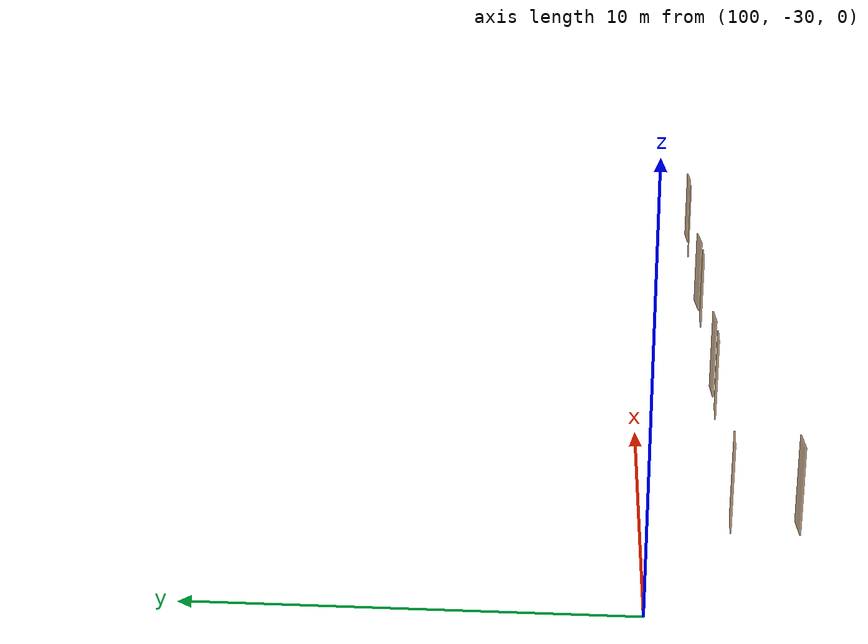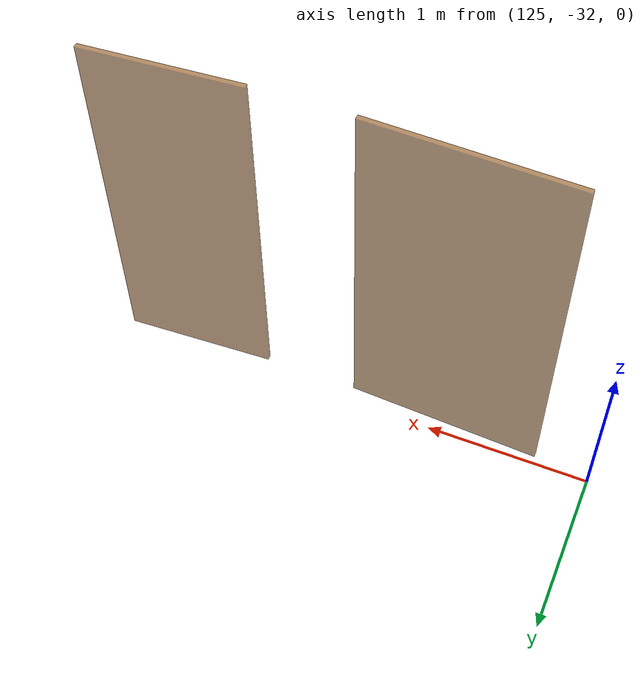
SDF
<sdf version="1.7">
 <world name="sim_world">
  <model name="puerta17">
   <pose>104.5937588091501 -32.12347325594603 0.0 0 0 3.093986082694925</pose>
   <link name="right">
    <pose>0 0 1.11 0 0 0</pose>
    <visual name="right_visual">
     <geometry><box><size>0.9280408053211409 0.03 2.2</size></box></geometry>
     <material>
      <ambient>0.5 0.25 0 0.6</ambient>
      <diffuse>0.5 0.25 0 0.6</diffuse>
      <pbr><metal><metalness>0.0</metalness></metal></pbr>
     </material>
    </visual>
    <collision name="right_collision">
     <geometry><box><size>0.9280408053211409 0.03 2.2</size></box></geometry>
     <surface><contact><collide_bitmask>0x02</collide_bitmask></contact></surface>
    </collision>
    <inertial>
     <mass>50.0</mass>
     <inertia><ixx>20.17041666666667</ixx><iyy>23.755248901421304</iyy><izz>3.592332234754632</izz></inertia>
    </inertial>
   </link>
   <joint name="right_joint" type="revolute">
    <parent>world</parent>
    <child>right</child>
    <axis><xyz>0 0 1</xyz><limit><lower>0</lower><upper>1.57</upper></limit></axis>
    <pose>0.46902040266057043 0 0 0 0 0</pose>
   </joint>
   <plugin name="register_component" filename="libregister_component.so">
    <component name="Door">
     <v_max_door>0.5</v_max_door>
     <a_max_door>0.3</a_max_door>
     <a_nom_door>0.15</a_nom_door>
     <dx_min_door>0.01</dx_min_door>
     <f_max_door>500.0</f_max_door>
     <ros_interface>true</ros_interface>
     <door name="puerta17" type="SwingDoor" left_joint_name="empty_joint" right_joint_name="right_joint"/>
    </component>
   </plugin>
  </model>
  <model name="puerta18">
   <pose>104.53996777165837 -33.685685315067786 0.0 0 0 -3.0890348459921255</pose>
   <link name="right">
    <pose>0 0 1.11 0 0 0</pose>
    <visual name="right_visual">
     <geometry><box><size>0.778074015602144 0.03 2.2</size></box></geometry>
     <material>
      <ambient>0.5 0.25 0 0.6</ambient>
      <diffuse>0.5 0.25 0 0.6</diffuse>
      <pbr><metal><metalness>0.0</metalness></metal></pbr>
     </material>
    </visual>
    <collision name="right_collision">
     <geometry><box><size>0.778074015602144 0.03 2.2</size></box></geometry>
     <surface><contact><collide_bitmask>0x02</collide_bitmask></contact></surface>
    </collision>
    <inertial>
     <mass>50.0</mass>
     <inertia><ixx>20.17041666666667</ixx><iyy>22.68916322398019</iyy><izz>2.5262465573135224</izz></inertia>
    </inertial>
   </link>
   <joint name="right_joint" type="revolute">
    <parent>world</parent>
    <child>right</child>
    <axis><xyz>0 0 -1</xyz><limit><lower>0</lower><upper>1.57</upper></limit></axis>
    <pose>0.394037007801072 0 0 0 0 0</pose>
   </joint>
   <plugin name="register_component" filename="libregister_component.so">
    <component name="Door">
     <v_max_door>0.5</v_max_door>
     <a_max_door>0.3</a_max_door>
     <a_nom_door>0.15</a_nom_door>
     <dx_min_door>0.01</dx_min_door>
     <f_max_door>500.0</f_max_door>
     <ros_interface>true</ros_interface>
     <door name="puerta18" type="SwingDoor" left_joint_name="empty_joint" right_joint_name="right_joint"/>
    </component>
   </plugin>
  </model>
  <model name="puerta19">
   <pose>111.47225880283908 -32.160666276785065 0.0 0 0 -0.0333225657936494</pose>
   <link name="right">
    <pose>0 0 1.11 0 0 0</pose>
    <visual name="right_visual">
     <geometry><box><size>0.8828336376845018 0.03 2.2</size></box></geometry>
     <material>
      <ambient>0.5 0.25 0 0.6</ambient>
      <diffuse>0.5 0.25 0 0.6</diffuse>
      <pbr><metal><metalness>0.0</metalness></metal></pbr>
     </material>
    </visual>
    <collision name="right_collision">
     <geometry><box><size>0.8828336376845018 0.03 2.2</size></box></geometry>
     <surface><contact><collide_bitmask>0x02</collide_bitmask></contact></surface>
    </collision>
    <inertial>
     <mass>50.0</mass>
     <inertia><ixx>20.17041666666667</ixx><iyy>23.414146799280214</iyy><izz>3.251230132613543</izz></inertia>
    </inertial>
   </link>
   <joint name="right_joint" type="revolute">
    <parent>world</parent>
    <child>right</child>
    <axis><xyz>0 0 -1</xyz><limit><lower>0</lower><upper>1.57</upper></limit></axis>
    <pose>0.44641681884225093 0 0 0 0 0</pose>
   </joint>
   <plugin name="register_component" filename="libregister_component.so">
    <component name="Door">
     <v_max_door>0.5</v_max_door>
     <a_max_door>0.3</a_max_door>
     <a_nom_door>0.15</a_nom_door>
     <dx_min_door>0.01</dx_min_door>
     <f_max_door>500.0</f_max_door>
     <ros_interface>true</ros_interface>
     <door name="puerta19" type="SwingDoor" left_joint_name="empty_joint" right_joint_name="right_joint"/>
    </component>
   </plugin>
  </model>
  <model name="puerta22">
   <pose>113.05615977852477 -32.15321925790666 0.0 0 0 -3.0889835429859094</pose>
   <link name="right">
    <pose>0 0 1.11 0 0 0</pose>
    <visual name="right_visual">
     <geometry><box><size>0.8389145263994523 0.03 2.2</size></box></geometry>
     <material>
      <ambient>0.5 0.25 0 0.6</ambient>
      <diffuse>0.5 0.25 0 0.6</diffuse>
      <pbr><metal><metalness>0.0</metalness></metal></pbr>
     </material>
    </visual>
    <collision name="right_collision">
     <geometry><box><size>0.8389145263994523 0.03 2.2</size></box></geometry>
     <surface><contact><collide_bitmask>0x02</collide_bitmask></contact></surface>
    </collision>
    <inertial>
     <mass>50.0</mass>
     <inertia><ixx>20.17041666666667</ixx><iyy>23.099073260850076</iyy><izz>2.936156594183406</izz></inertia>
    </inertial>
   </link>
   <joint name="right_joint" type="revolute">
    <parent>world</parent>
    <child>right</child>
    <axis><xyz>0 0 1</xyz><limit><lower>0</lower><upper>1.57</upper></limit></axis>
    <pose>0.42445726319972615 0 0 0 0 0</pose>
   </joint>
   <plugin name="register_component" filename="libregister_component.so">
    <component name="Door">
     <v_max_door>0.5</v_max_door>
     <a_max_door>0.3</a_max_door>
     <a_nom_door>0.15</a_nom_door>
     <dx_min_door>0.01</dx_min_door>
     <f_max_door>500.0</f_max_door>
     <ros_interface>true</ros_interface>
     <door name="puerta22" type="SwingDoor" left_joint_name="empty_joint" right_joint_name="right_joint"/>
    </component>
   </plugin>
  </model>
  <model name="puerta23">
   <pose>118.73741474846322 -32.13834625692635 0.0 0 0 -0.016416297145013498</pose>
   <link name="right">
    <pose>0 0 1.11 0 0 0</pose>
    <visual name="right_visual">
     <geometry><box><size>0.8973122046900142 0.03 2.2</size></box></geometry>
     <material>
      <ambient>0.5 0.25 0 0.6</ambient>
      <diffuse>0.5 0.25 0 0.6</diffuse>
      <pbr><metal><metalness>0.0</metalness></metal></pbr>
     </material>
    </visual>
    <collision name="right_collision">
     <geometry><box><size>0.8973122046900142 0.03 2.2</size></box></geometry>
     <surface><contact><collide_bitmask>0x02</collide_bitmask></contact></surface>
    </collision>
    <inertial>
     <mass>50.0</mass>
     <inertia><ixx>20.17041666666667</ixx><iyy>23.521538302856897</iyy><izz>3.358621636190225</izz></inertia>
    </inertial>
   </link>
   <joint name="right_joint" type="revolute">
    <parent>world</parent>
    <child>right</child>
    <axis><xyz>0 0 -1</xyz><limit><lower>0</lower><upper>1.57</upper></limit></axis>
    <pose>0.4536561023450071 0 0 0 0 0</pose>
   </joint>
   <plugin name="register_component" filename="libregister_component.so">
    <component name="Door">
     <v_max_door>0.5</v_max_door>
     <a_max_door>0.3</a_max_door>
     <a_nom_door>0.15</a_nom_door>
     <dx_min_door>0.01</dx_min_door>
     <f_max_door>500.0</f_max_door>
     <ros_interface>true</ros_interface>
     <door name="puerta23" type="SwingDoor" left_joint_name="empty_joint" right_joint_name="right_joint"/>
    </component>
   </plugin>
  </model>
  <model name="puerta26">
   <pose>120.35850874498794 -32.10117427286381 0.0 0 0 -3.0548490071708736</pose>
   <link name="right">
    <pose>0 0 1.11 0 0 0</pose>
    <visual name="right_visual">
     <geometry><box><size>1.0200468010529855 0.03 2.2</size></box></geometry>
     <material>
      <ambient>0.5 0.25 0 0.6</ambient>
      <diffuse>0.5 0.25 0 0.6</diffuse>
      <pbr><metal><metalness>0.0</metalness></metal></pbr>
     </material>
    </visual>
    <collision name="right_collision">
     <geometry><box><size>1.0200468010529855 0.03 2.2</size></box></geometry>
     <surface><contact><collide_bitmask>0x02</collide_bitmask></contact></surface>
    </collision>
    <inertial>
     <mass>50.0</mass>
     <inertia><ixx>20.17041666666667</ixx><iyy>24.50206448474346</iyy><izz>4.339147818076788</izz></inertia>
    </inertial>
   </link>
   <joint name="right_joint" type="revolute">
    <parent>world</parent>
    <child>right</child>
    <axis><xyz>0 0 1</xyz><limit><lower>0</lower><upper>1.57</upper></limit></axis>
    <pose>0.5150234005264928 0 0 0 0 0</pose>
   </joint>
   <plugin name="register_component" filename="libregister_component.so">
    <component name="Door">
     <v_max_door>0.5</v_max_door>
     <a_max_door>0.3</a_max_door>
     <a_nom_door>0.15</a_nom_door>
     <dx_min_door>0.01</dx_min_door>
     <f_max_door>500.0</f_max_door>
     <ros_interface>true</ros_interface>
     <door name="puerta26" type="SwingDoor" left_joint_name="empty_joint" right_joint_name="right_joint"/>
    </component>
   </plugin>
  </model>
  <model name="puerta27">
   <pose>125.93567374484067 -32.0863012718835 0.0 0 0 -0.049343492494294386</pose>
   <link name="right">
    <pose>0 0 1.11 0 0 0</pose>
    <visual name="right_visual">
     <geometry><box><size>1.196160112134389 0.03 2.2</size></box></geometry>
     <material>
      <ambient>0.5 0.25 0 0.6</ambient>
      <diffuse>0.5 0.25 0 0.6</diffuse>
      <pbr><metal><metalness>0.0</metalness></metal></pbr>
     </material>
    </visual>
    <collision name="right_collision">
     <geometry><box><size>1.196160112134389 0.03 2.2</size></box></geometry>
     <surface><contact><collide_bitmask>0x02</collide_bitmask></contact></surface>
    </collision>
    <inertial>
     <mass>50.0</mass>
     <inertia><ixx>20.17041666666667</ixx><iyy>26.128329224422313</iyy><izz>5.965412557755641</izz></inertia>
    </inertial>
   </link>
   <joint name="right_joint" type="revolute">
    <parent>world</parent>
    <child>right</child>
    <axis><xyz>0 0 -1</xyz><limit><lower>0</lower><upper>1.57</upper></limit></axis>
    <pose>0.6030800560671945 0 0 0 0 0</pose>
   </joint>
   <plugin name="register_component" filename="libregister_component.so">
    <component name="Door">
     <v_max_door>0.5</v_max_door>
     <a_max_door>0.3</a_max_door>
     <a_nom_door>0.15</a_nom_door>
     <dx_min_door>0.01</dx_min_door>
     <f_max_door>500.0</f_max_door>
     <ros_interface>true</ros_interface>
     <door name="puerta27" type="SwingDoor" left_joint_name="empty_joint" right_joint_name="right_joint"/>
    </component>
   </plugin>
  </model>
  <model name="puerta30">
   <pose>127.59396076220443 -32.093727253985406 0.0 0 0 -3.0947278202924484</pose>
   <link name="right">
    <pose>0 0 1.11 0 0 0</pose>
    <visual name="right_visual">
     <geometry><box><size>0.9428762046886623 0.03 2.2</size></box></geometry>
     <material>
      <ambient>0.5 0.25 0 0.6</ambient>
      <diffuse>0.5 0.25 0 0.6</diffuse>
      <pbr><metal><metalness>0.0</metalness></metal></pbr>
     </material>
    </visual>
    <collision name="right_collision">
     <geometry><box><size>0.9428762046886623 0.03 2.2</size></box></geometry>
     <surface><contact><collide_bitmask>0x02</collide_bitmask></contact></surface>
    </collision>
    <inertial>
     <mass>50.0</mass>
     <inertia><ixx>20.17041666666667</ixx><iyy>23.870898072367073</iyy><izz>3.707981405700401</izz></inertia>
    </inertial>
   </link>
   <joint name="right_joint" type="revolute">
    <parent>world</parent>
    <child>right</child>
    <axis><xyz>0 0 1</xyz><limit><lower>0</lower><upper>1.57</upper></limit></axis>
    <pose>0.47643810234433115 0 0 0 0 0</pose>
   </joint>
   <plugin name="register_component" filename="libregister_component.so">
    <component name="Door">
     <v_max_door>0.5</v_max_door>
     <a_max_door>0.3</a_max_door>
     <a_nom_door>0.15</a_nom_door>
     <dx_min_door>0.01</dx_min_door>
     <f_max_door>500.0</f_max_door>
     <ros_interface>true</ros_interface>
     <door name="puerta30" type="SwingDoor" left_joint_name="empty_joint" right_joint_name="right_joint"/>
    </component>
   </plugin>
  </model>
 </world>
</sdf>
